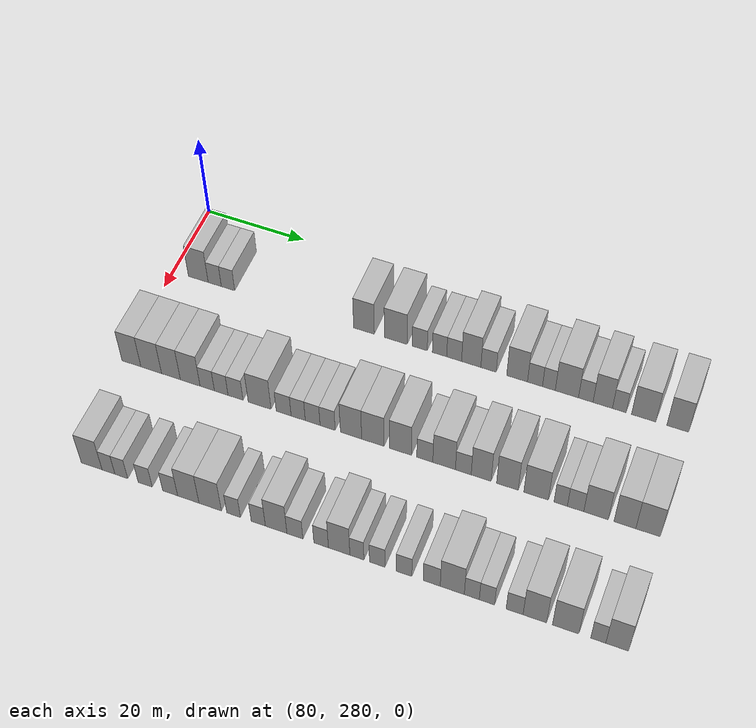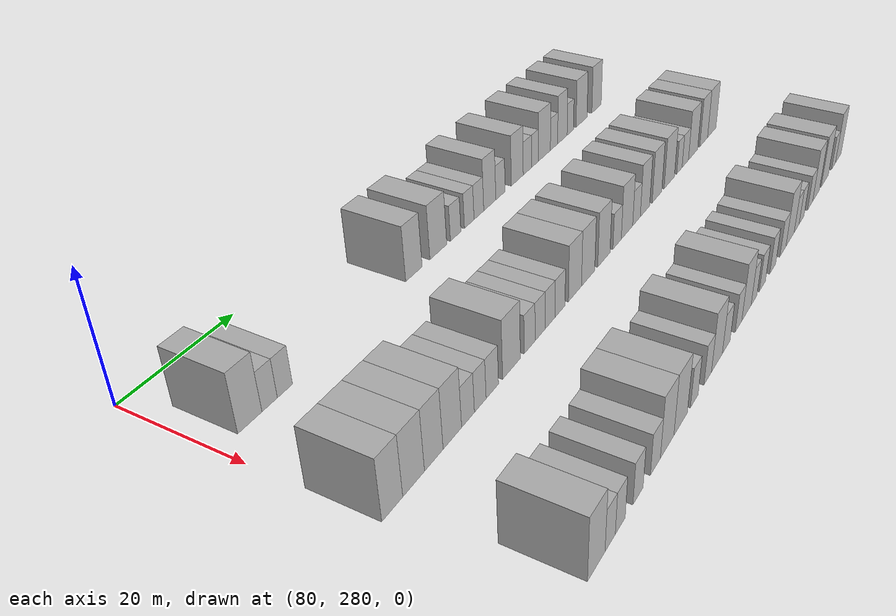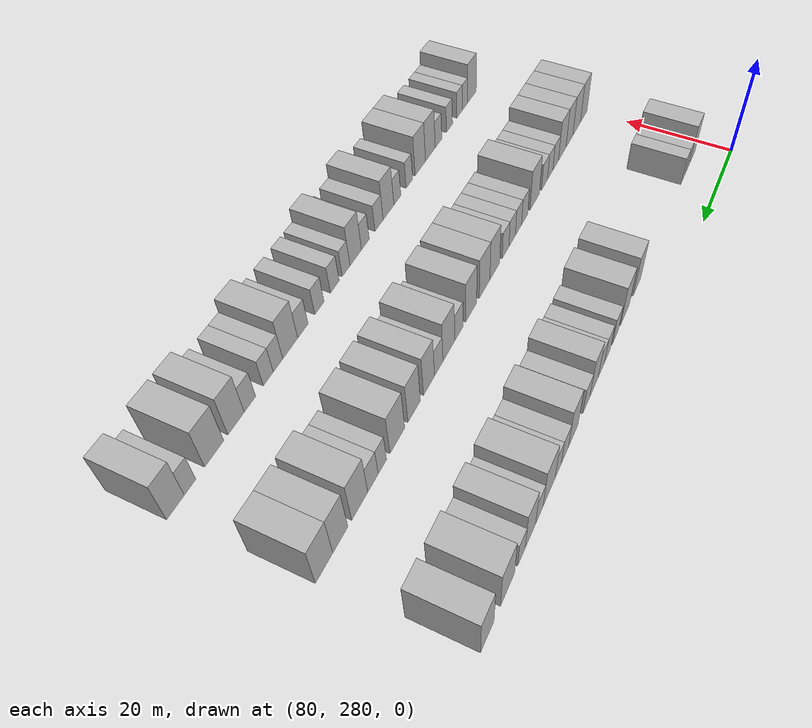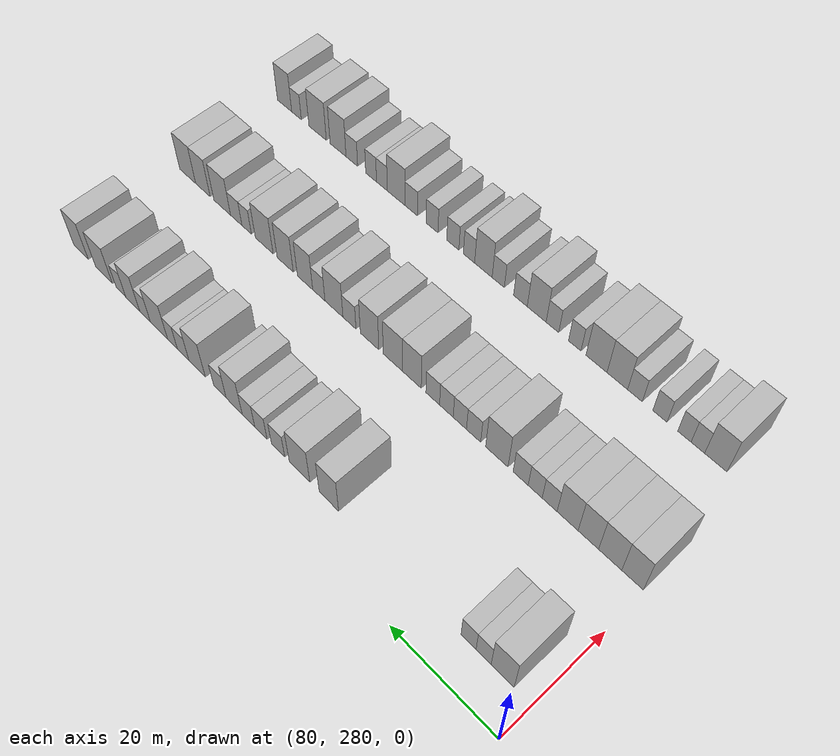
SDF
<sdf version="1.6">
 <world name="default">
  <model name="building_721">
   <static>1</static>
   <pose>91.0000 285.1965 0 0.000000 0.000000 0.000000</pose>
   <link name="link">
    <pose>0 0 4.50 0 0 0</pose>
    <collision name="collision"><geometry><box><size>10.0000 4.1044 9.0000</size></box></geometry></collision>
    <visual name="visual">
     <cast_shadows>0</cast_shadows>
     <geometry><box><size>10.0000 4.1044 9.0000</size></box></geometry>
     <material>
      <script>
       <uri>model://HANNAS_wall/materials/scripts</uri>
       <uri>model://HANNAS_wall/materials/textures</uri>
       <name>vrc/HANNAS_wall</name>
      </script>
     </material>
    </visual>
   </link>
  </model>
  <model name="building_722">
   <static>1</static>
   <pose>91.0000 288.6108 0 0.000000 0.000000 0.000000</pose>
   <link name="link">
    <pose>0 0 3.00 0 0 0</pose>
    <collision name="collision"><geometry><box><size>10.0000 2.7242 6.0000</size></box></geometry></collision>
    <visual name="visual">
     <cast_shadows>0</cast_shadows>
     <geometry><box><size>10.0000 2.7242 6.0000</size></box></geometry>
     <material>
      <script>
       <uri>model://HANNAS_wall/materials/scripts</uri>
       <uri>model://HANNAS_wall/materials/textures</uri>
       <name>vrc/HANNAS_wall</name>
      </script>
     </material>
    </visual>
   </link>
  </model>
  <model name="building_723">
   <static>1</static>
   <pose>91.0000 291.3552 0 0.000000 0.000000 0.000000</pose>
   <link name="link">
    <pose>0 0 3.00 0 0 0</pose>
    <collision name="collision"><geometry><box><size>10.0000 2.7645 6.0000</size></box></geometry></collision>
    <visual name="visual">
     <cast_shadows>0</cast_shadows>
     <geometry><box><size>10.0000 2.7645 6.0000</size></box></geometry>
     <material>
      <script>
       <uri>model://HANNAS_wall/materials/scripts</uri>
       <uri>model://HANNAS_wall/materials/textures</uri>
       <name>vrc/HANNAS_wall</name>
      </script>
     </material>
    </visual>
   </link>
  </model>
  <model name="building_724">
   <static>1</static>
   <pose>91.0000 318.8688 0 0.000000 0.000000 0.000000</pose>
   <link name="link">
    <pose>0 0 4.50 0 0 0</pose>
    <collision name="collision"><geometry><box><size>10.0000 4.0876 9.0000</size></box></geometry></collision>
    <visual name="visual">
     <cast_shadows>0</cast_shadows>
     <geometry><box><size>10.0000 4.0876 9.0000</size></box></geometry>
     <material>
      <script>
       <uri>model://HANNAS_wall/materials/scripts</uri>
       <uri>model://HANNAS_wall/materials/textures</uri>
       <name>vrc/HANNAS_wall</name>
      </script>
     </material>
    </visual>
   </link>
  </model>
  <model name="building_725">
   <static>1</static>
   <pose>91.0000 325.1496 0 0.000000 0.000000 0.000000</pose>
   <link name="link">
    <pose>0 0 4.50 0 0 0</pose>
    <collision name="collision"><geometry><box><size>10.0000 4.4740 9.0000</size></box></geometry></collision>
    <visual name="visual">
     <cast_shadows>0</cast_shadows>
     <geometry><box><size>10.0000 4.4740 9.0000</size></box></geometry>
     <material>
      <script>
       <uri>model://HANNAS_wall/materials/scripts</uri>
       <uri>model://HANNAS_wall/materials/textures</uri>
       <name>vrc/HANNAS_wall</name>
      </script>
     </material>
    </visual>
   </link>
  </model>
  <model name="building_726">
   <static>1</static>
   <pose>91.0000 329.8470 0 0.000000 0.000000 0.000000</pose>
   <link name="link">
    <pose>0 0 3.00 0 0 0</pose>
    <collision name="collision"><geometry><box><size>10.0000 2.9206 6.0000</size></box></geometry></collision>
    <visual name="visual">
     <cast_shadows>0</cast_shadows>
     <geometry><box><size>10.0000 2.9206 6.0000</size></box></geometry>
     <material>
      <script>
       <uri>model://HANNAS_wall/materials/scripts</uri>
       <uri>model://HANNAS_wall/materials/textures</uri>
       <name>vrc/HANNAS_wall</name>
      </script>
     </material>
    </visual>
   </link>
  </model>
  <model name="building_727">
   <static>1</static>
   <pose>91.0000 333.6961 0 0.000000 0.000000 0.000000</pose>
   <link name="link">
    <pose>0 0 3.00 0 0 0</pose>
    <collision name="collision"><geometry><box><size>10.0000 2.7776 6.0000</size></box></geometry></collision>
    <visual name="visual">
     <cast_shadows>0</cast_shadows>
     <geometry><box><size>10.0000 2.7776 6.0000</size></box></geometry>
     <material>
      <script>
       <uri>model://HANNAS_wall/materials/scripts</uri>
       <uri>model://HANNAS_wall/materials/textures</uri>
       <name>vrc/HANNAS_wall</name>
      </script>
     </material>
    </visual>
   </link>
  </model>
  <model name="building_728">
   <static>1</static>
   <pose>91.0000 336.5266 0 0.000000 0.000000 0.000000</pose>
   <link name="link">
    <pose>0 0 3.00 0 0 0</pose>
    <collision name="collision"><geometry><box><size>10.0000 2.8834 6.0000</size></box></geometry></collision>
    <visual name="visual">
     <cast_shadows>0</cast_shadows>
     <geometry><box><size>10.0000 2.8834 6.0000</size></box></geometry>
     <material>
      <script>
       <uri>model://HANNAS_wall/materials/scripts</uri>
       <uri>model://HANNAS_wall/materials/textures</uri>
       <name>vrc/HANNAS_wall</name>
      </script>
     </material>
    </visual>
   </link>
  </model>
  <model name="building_729">
   <static>1</static>
   <pose>91.0000 339.8227 0 0.000000 0.000000 0.000000</pose>
   <link name="link">
    <pose>0 0 4.50 0 0 0</pose>
    <collision name="collision"><geometry><box><size>10.0000 3.7089 9.0000</size></box></geometry></collision>
    <visual name="visual">
     <cast_shadows>0</cast_shadows>
     <geometry><box><size>10.0000 3.7089 9.0000</size></box></geometry>
     <material>
      <script>
       <uri>model://HANNAS_wall/materials/scripts</uri>
       <uri>model://HANNAS_wall/materials/textures</uri>
       <name>vrc/HANNAS_wall</name>
      </script>
     </material>
    </visual>
   </link>
  </model>
  <model name="building_730">
   <static>1</static>
   <pose>91.0000 343.1491 0 0.000000 0.000000 0.000000</pose>
   <link name="link">
    <pose>0 0 3.00 0 0 0</pose>
    <collision name="collision"><geometry><box><size>10.0000 2.9439 6.0000</size></box></geometry></collision>
    <visual name="visual">
     <cast_shadows>0</cast_shadows>
     <geometry><box><size>10.0000 2.9439 6.0000</size></box></geometry>
     <material>
      <script>
       <uri>model://HANNAS_wall/materials/scripts</uri>
       <uri>model://HANNAS_wall/materials/textures</uri>
       <name>vrc/HANNAS_wall</name>
      </script>
     </material>
    </visual>
   </link>
  </model>
  <model name="building_731">
   <static>1</static>
   <pose>91.0000 348.5971 0 0.000000 0.000000 0.000000</pose>
   <link name="link">
    <pose>0 0 4.50 0 0 0</pose>
    <collision name="collision"><geometry><box><size>10.0000 3.9522 9.0000</size></box></geometry></collision>
    <visual name="visual">
     <cast_shadows>0</cast_shadows>
     <geometry><box><size>10.0000 3.9522 9.0000</size></box></geometry>
     <material>
      <script>
       <uri>model://HANNAS_wall/materials/scripts</uri>
       <uri>model://HANNAS_wall/materials/textures</uri>
       <name>vrc/HANNAS_wall</name>
      </script>
     </material>
    </visual>
   </link>
  </model>
  <model name="building_732">
   <static>1</static>
   <pose>91.0000 351.9873 0 0.000000 0.000000 0.000000</pose>
   <link name="link">
    <pose>0 0 3.00 0 0 0</pose>
    <collision name="collision"><geometry><box><size>10.0000 2.8280 6.0000</size></box></geometry></collision>
    <visual name="visual">
     <cast_shadows>0</cast_shadows>
     <geometry><box><size>10.0000 2.8280 6.0000</size></box></geometry>
     <material>
      <script>
       <uri>model://HANNAS_wall/materials/scripts</uri>
       <uri>model://HANNAS_wall/materials/textures</uri>
       <name>vrc/HANNAS_wall</name>
      </script>
     </material>
    </visual>
   </link>
  </model>
  <model name="building_733">
   <static>1</static>
   <pose>91.0000 354.6055 0 0.000000 0.000000 0.000000</pose>
   <link name="link">
    <pose>0 0 3.00 0 0 0</pose>
    <collision name="collision"><geometry><box><size>10.0000 2.4084 6.0000</size></box></geometry></collision>
    <visual name="visual">
     <cast_shadows>0</cast_shadows>
     <geometry><box><size>10.0000 2.4084 6.0000</size></box></geometry>
     <material>
      <script>
       <uri>model://HANNAS_wall/materials/scripts</uri>
       <uri>model://HANNAS_wall/materials/textures</uri>
       <name>vrc/HANNAS_wall</name>
      </script>
     </material>
    </visual>
   </link>
  </model>
  <model name="building_734">
   <static>1</static>
   <pose>91.0000 357.9881 0 0.000000 0.000000 0.000000</pose>
   <link name="link">
    <pose>0 0 4.50 0 0 0</pose>
    <collision name="collision"><geometry><box><size>10.0000 4.3568 9.0000</size></box></geometry></collision>
    <visual name="visual">
     <cast_shadows>0</cast_shadows>
     <geometry><box><size>10.0000 4.3568 9.0000</size></box></geometry>
     <material>
      <script>
       <uri>model://HANNAS_wall/materials/scripts</uri>
       <uri>model://HANNAS_wall/materials/textures</uri>
       <name>vrc/HANNAS_wall</name>
      </script>
     </material>
    </visual>
   </link>
  </model>
  <model name="building_735">
   <static>1</static>
   <pose>91.0000 361.5213 0 0.000000 0.000000 0.000000</pose>
   <link name="link">
    <pose>0 0 3.00 0 0 0</pose>
    <collision name="collision"><geometry><box><size>10.0000 2.7095 6.0000</size></box></geometry></collision>
    <visual name="visual">
     <cast_shadows>0</cast_shadows>
     <geometry><box><size>10.0000 2.7095 6.0000</size></box></geometry>
     <material>
      <script>
       <uri>model://HANNAS_wall/materials/scripts</uri>
       <uri>model://HANNAS_wall/materials/textures</uri>
       <name>vrc/HANNAS_wall</name>
      </script>
     </material>
    </visual>
   </link>
  </model>
  <model name="building_736">
   <static>1</static>
   <pose>91.0000 364.6834 0 0.000000 0.000000 0.000000</pose>
   <link name="link">
    <pose>0 0 4.50 0 0 0</pose>
    <collision name="collision"><geometry><box><size>10.0000 3.6148 9.0000</size></box></geometry></collision>
    <visual name="visual">
     <cast_shadows>0</cast_shadows>
     <geometry><box><size>10.0000 3.6148 9.0000</size></box></geometry>
     <material>
      <script>
       <uri>model://HANNAS_wall/materials/scripts</uri>
       <uri>model://HANNAS_wall/materials/textures</uri>
       <name>vrc/HANNAS_wall</name>
      </script>
     </material>
    </visual>
   </link>
  </model>
  <model name="building_737">
   <static>1</static>
   <pose>91.0000 367.7470 0 0.000000 0.000000 0.000000</pose>
   <link name="link">
    <pose>0 0 3.00 0 0 0</pose>
    <collision name="collision"><geometry><box><size>10.0000 2.5124 6.0000</size></box></geometry></collision>
    <visual name="visual">
     <cast_shadows>0</cast_shadows>
     <geometry><box><size>10.0000 2.5124 6.0000</size></box></geometry>
     <material>
      <script>
       <uri>model://HANNAS_wall/materials/scripts</uri>
       <uri>model://HANNAS_wall/materials/textures</uri>
       <name>vrc/HANNAS_wall</name>
      </script>
     </material>
    </visual>
   </link>
  </model>
  <model name="building_738">
   <static>1</static>
   <pose>91.0000 372.2382 0 0.000000 0.000000 0.000000</pose>
   <link name="link">
    <pose>0 0 4.50 0 0 0</pose>
    <collision name="collision"><geometry><box><size>10.0000 4.4700 9.0000</size></box></geometry></collision>
    <visual name="visual">
     <cast_shadows>0</cast_shadows>
     <geometry><box><size>10.0000 4.4700 9.0000</size></box></geometry>
     <material>
      <script>
       <uri>model://HANNAS_wall/materials/scripts</uri>
       <uri>model://HANNAS_wall/materials/textures</uri>
       <name>vrc/HANNAS_wall</name>
      </script>
     </material>
    </visual>
   </link>
  </model>
  <model name="building_739">
   <static>1</static>
   <pose>91.0000 378.4650 0 0.000000 0.000000 0.000000</pose>
   <link name="link">
    <pose>0 0 4.50 0 0 0</pose>
    <collision name="collision"><geometry><box><size>10.0000 3.9837 9.0000</size></box></geometry></collision>
    <visual name="visual">
     <cast_shadows>0</cast_shadows>
     <geometry><box><size>10.0000 3.9837 9.0000</size></box></geometry>
     <material>
      <script>
       <uri>model://HANNAS_wall/materials/scripts</uri>
       <uri>model://HANNAS_wall/materials/textures</uri>
       <name>vrc/HANNAS_wall</name>
      </script>
     </material>
    </visual>
   </link>
  </model>
  <model name="building_900">
   <static>1</static>
   <pose>113.0000 282.1779 0 0.000000 0.000000 0.000000</pose>
   <link name="link">
    <pose>0 0 4.50 0 0 0</pose>
    <collision name="collision"><geometry><box><size>10.0000 3.8177 9.0000</size></box></geometry></collision>
    <visual name="visual">
     <cast_shadows>0</cast_shadows>
     <geometry><box><size>10.0000 3.8177 9.0000</size></box></geometry>
     <material>
      <script>
       <uri>model://HANNAS_wall/materials/scripts</uri>
       <uri>model://HANNAS_wall/materials/textures</uri>
       <name>vrc/HANNAS_wall</name>
      </script>
     </material>
    </visual>
   </link>
  </model>
  <model name="building_901">
   <static>1</static>
   <pose>113.0000 286.1667 0 0.000000 0.000000 0.000000</pose>
   <link name="link">
    <pose>0 0 4.50 0 0 0</pose>
    <collision name="collision"><geometry><box><size>10.0000 4.1598 9.0000</size></box></geometry></collision>
    <visual name="visual">
     <cast_shadows>0</cast_shadows>
     <geometry><box><size>10.0000 4.1598 9.0000</size></box></geometry>
     <material>
      <script>
       <uri>model://HANNAS_wall/materials/scripts</uri>
       <uri>model://HANNAS_wall/materials/textures</uri>
       <name>vrc/HANNAS_wall</name>
      </script>
     </material>
    </visual>
   </link>
  </model>
  <model name="building_902">
   <static>1</static>
   <pose>113.0000 290.1234 0 0.000000 0.000000 0.000000</pose>
   <link name="link">
    <pose>0 0 4.50 0 0 0</pose>
    <collision name="collision"><geometry><box><size>10.0000 3.7538 9.0000</size></box></geometry></collision>
    <visual name="visual">
     <cast_shadows>0</cast_shadows>
     <geometry><box><size>10.0000 3.7538 9.0000</size></box></geometry>
     <material>
      <script>
       <uri>model://HANNAS_wall/materials/scripts</uri>
       <uri>model://HANNAS_wall/materials/textures</uri>
       <name>vrc/HANNAS_wall</name>
      </script>
     </material>
    </visual>
   </link>
  </model>
  <model name="building_903">
   <static>1</static>
   <pose>113.0000 293.9611 0 0.000000 0.000000 0.000000</pose>
   <link name="link">
    <pose>0 0 4.50 0 0 0</pose>
    <collision name="collision"><geometry><box><size>10.0000 3.9216 9.0000</size></box></geometry></collision>
    <visual name="visual">
     <cast_shadows>0</cast_shadows>
     <geometry><box><size>10.0000 3.9216 9.0000</size></box></geometry>
     <material>
      <script>
       <uri>model://HANNAS_wall/materials/scripts</uri>
       <uri>model://HANNAS_wall/materials/textures</uri>
       <name>vrc/HANNAS_wall</name>
      </script>
     </material>
    </visual>
   </link>
  </model>
  <model name="building_904">
   <static>1</static>
   <pose>113.0000 297.3379 0 0.000000 0.000000 0.000000</pose>
   <link name="link">
    <pose>0 0 3.00 0 0 0</pose>
    <collision name="collision"><geometry><box><size>10.0000 2.8319 6.0000</size></box></geometry></collision>
    <visual name="visual">
     <cast_shadows>0</cast_shadows>
     <geometry><box><size>10.0000 2.8319 6.0000</size></box></geometry>
     <material>
      <script>
       <uri>model://HANNAS_wall/materials/scripts</uri>
       <uri>model://HANNAS_wall/materials/textures</uri>
       <name>vrc/HANNAS_wall</name>
      </script>
     </material>
    </visual>
   </link>
  </model>
  <model name="building_905">
   <static>1</static>
   <pose>113.0000 300.0976 0 0.000000 0.000000 0.000000</pose>
   <link name="link">
    <pose>0 0 3.00 0 0 0</pose>
    <collision name="collision"><geometry><box><size>10.0000 2.6874 6.0000</size></box></geometry></collision>
    <visual name="visual">
     <cast_shadows>0</cast_shadows>
     <geometry><box><size>10.0000 2.6874 6.0000</size></box></geometry>
     <material>
      <script>
       <uri>model://HANNAS_wall/materials/scripts</uri>
       <uri>model://HANNAS_wall/materials/textures</uri>
       <name>vrc/HANNAS_wall</name>
      </script>
     </material>
    </visual>
   </link>
  </model>
  <model name="building_906">
   <static>1</static>
   <pose>113.0000 302.9103 0 0.000000 0.000000 0.000000</pose>
   <link name="link">
    <pose>0 0 3.00 0 0 0</pose>
    <collision name="collision"><geometry><box><size>10.0000 2.9380 6.0000</size></box></geometry></collision>
    <visual name="visual">
     <cast_shadows>0</cast_shadows>
     <geometry><box><size>10.0000 2.9380 6.0000</size></box></geometry>
     <material>
      <script>
       <uri>model://HANNAS_wall/materials/scripts</uri>
       <uri>model://HANNAS_wall/materials/textures</uri>
       <name>vrc/HANNAS_wall</name>
      </script>
     </material>
    </visual>
   </link>
  </model>
  <model name="building_907">
   <static>1</static>
   <pose>113.0000 307.6089 0 0.000000 0.000000 0.000000</pose>
   <link name="link">
    <pose>0 0 4.50 0 0 0</pose>
    <collision name="collision"><geometry><box><size>10.0000 4.4592 9.0000</size></box></geometry></collision>
    <visual name="visual">
     <cast_shadows>0</cast_shadows>
     <geometry><box><size>10.0000 4.4592 9.0000</size></box></geometry>
     <material>
      <script>
       <uri>model://HANNAS_wall/materials/scripts</uri>
       <uri>model://HANNAS_wall/materials/textures</uri>
       <name>vrc/HANNAS_wall</name>
      </script>
     </material>
    </visual>
   </link>
  </model>
  <model name="building_908">
   <static>1</static>
   <pose>113.0000 312.2812 0 0.000000 0.000000 0.000000</pose>
   <link name="link">
    <pose>0 0 3.00 0 0 0</pose>
    <collision name="collision"><geometry><box><size>10.0000 2.8855 6.0000</size></box></geometry></collision>
    <visual name="visual">
     <cast_shadows>0</cast_shadows>
     <geometry><box><size>10.0000 2.8855 6.0000</size></box></geometry>
     <material>
      <script>
       <uri>model://HANNAS_wall/materials/scripts</uri>
       <uri>model://HANNAS_wall/materials/textures</uri>
       <name>vrc/HANNAS_wall</name>
      </script>
     </material>
    </visual>
   </link>
  </model>
  <model name="building_909">
   <static>1</static>
   <pose>113.0000 315.0869 0 0.000000 0.000000 0.000000</pose>
   <link name="link">
    <pose>0 0 3.00 0 0 0</pose>
    <collision name="collision"><geometry><box><size>10.0000 2.7259 6.0000</size></box></geometry></collision>
    <visual name="visual">
     <cast_shadows>0</cast_shadows>
     <geometry><box><size>10.0000 2.7259 6.0000</size></box></geometry>
     <material>
      <script>
       <uri>model://HANNAS_wall/materials/scripts</uri>
       <uri>model://HANNAS_wall/materials/textures</uri>
       <name>vrc/HANNAS_wall</name>
      </script>
     </material>
    </visual>
   </link>
  </model>
  <model name="building_910">
   <static>1</static>
   <pose>113.0000 317.8693 0 0.000000 0.000000 0.000000</pose>
   <link name="link">
    <pose>0 0 3.00 0 0 0</pose>
    <collision name="collision"><geometry><box><size>10.0000 2.8390 6.0000</size></box></geometry></collision>
    <visual name="visual">
     <cast_shadows>0</cast_shadows>
     <geometry><box><size>10.0000 2.8390 6.0000</size></box></geometry>
     <material>
      <script>
       <uri>model://HANNAS_wall/materials/scripts</uri>
       <uri>model://HANNAS_wall/materials/textures</uri>
       <name>vrc/HANNAS_wall</name>
      </script>
     </material>
    </visual>
   </link>
  </model>
  <model name="building_911">
   <static>1</static>
   <pose>113.0000 320.7309 0 0.000000 0.000000 0.000000</pose>
   <link name="link">
    <pose>0 0 3.00 0 0 0</pose>
    <collision name="collision"><geometry><box><size>10.0000 2.8842 6.0000</size></box></geometry></collision>
    <visual name="visual">
     <cast_shadows>0</cast_shadows>
     <geometry><box><size>10.0000 2.8842 6.0000</size></box></geometry>
     <material>
      <script>
       <uri>model://HANNAS_wall/materials/scripts</uri>
       <uri>model://HANNAS_wall/materials/textures</uri>
       <name>vrc/HANNAS_wall</name>
      </script>
     </material>
    </visual>
   </link>
  </model>
  <model name="building_912">
   <static>1</static>
   <pose>113.0000 325.1867 0 0.000000 0.000000 0.000000</pose>
   <link name="link">
    <pose>0 0 4.50 0 0 0</pose>
    <collision name="collision"><geometry><box><size>10.0000 4.0275 9.0000</size></box></geometry></collision>
    <visual name="visual">
     <cast_shadows>0</cast_shadows>
     <geometry><box><size>10.0000 4.0275 9.0000</size></box></geometry>
     <material>
      <script>
       <uri>model://HANNAS_wall/materials/scripts</uri>
       <uri>model://HANNAS_wall/materials/textures</uri>
       <name>vrc/HANNAS_wall</name>
      </script>
     </material>
    </visual>
   </link>
  </model>
  <model name="building_913">
   <static>1</static>
   <pose>113.0000 329.3112 0 0.000000 0.000000 0.000000</pose>
   <link name="link">
    <pose>0 0 4.50 0 0 0</pose>
    <collision name="collision"><geometry><box><size>10.0000 4.2214 9.0000</size></box></geometry></collision>
    <visual name="visual">
     <cast_shadows>0</cast_shadows>
     <geometry><box><size>10.0000 4.2214 9.0000</size></box></geometry>
     <material>
      <script>
       <uri>model://HANNAS_wall/materials/scripts</uri>
       <uri>model://HANNAS_wall/materials/textures</uri>
       <name>vrc/HANNAS_wall</name>
      </script>
     </material>
    </visual>
   </link>
  </model>
  <model name="building_914">
   <static>1</static>
   <pose>113.0000 334.4838 0 0.000000 0.000000 0.000000</pose>
   <link name="link">
    <pose>0 0 4.50 0 0 0</pose>
    <collision name="collision"><geometry><box><size>10.0000 4.1239 9.0000</size></box></geometry></collision>
    <visual name="visual">
     <cast_shadows>0</cast_shadows>
     <geometry><box><size>10.0000 4.1239 9.0000</size></box></geometry>
     <material>
      <script>
       <uri>model://HANNAS_wall/materials/scripts</uri>
       <uri>model://HANNAS_wall/materials/textures</uri>
       <name>vrc/HANNAS_wall</name>
      </script>
     </material>
    </visual>
   </link>
  </model>
  <model name="building_915">
   <static>1</static>
   <pose>113.0000 339.0324 0 0.000000 0.000000 0.000000</pose>
   <link name="link">
    <pose>0 0 3.00 0 0 0</pose>
    <collision name="collision"><geometry><box><size>10.0000 2.9733 6.0000</size></box></geometry></collision>
    <visual name="visual">
     <cast_shadows>0</cast_shadows>
     <geometry><box><size>10.0000 2.9733 6.0000</size></box></geometry>
     <material>
      <script>
       <uri>model://HANNAS_wall/materials/scripts</uri>
       <uri>model://HANNAS_wall/materials/textures</uri>
       <name>vrc/HANNAS_wall</name>
      </script>
     </material>
    </visual>
   </link>
  </model>
  <model name="building_916">
   <static>1</static>
   <pose>113.0000 342.6079 0 0.000000 0.000000 0.000000</pose>
   <link name="link">
    <pose>0 0 4.50 0 0 0</pose>
    <collision name="collision"><geometry><box><size>10.0000 4.1776 9.0000</size></box></geometry></collision>
    <visual name="visual">
     <cast_shadows>0</cast_shadows>
     <geometry><box><size>10.0000 4.1776 9.0000</size></box></geometry>
     <material>
      <script>
       <uri>model://HANNAS_wall/materials/scripts</uri>
       <uri>model://HANNAS_wall/materials/textures</uri>
       <name>vrc/HANNAS_wall</name>
      </script>
     </material>
    </visual>
   </link>
  </model>
  <model name="building_917">
   <static>1</static>
   <pose>113.0000 346.1414 0 0.000000 0.000000 0.000000</pose>
   <link name="link">
    <pose>0 0 3.00 0 0 0</pose>
    <collision name="collision"><geometry><box><size>10.0000 2.8895 6.0000</size></box></geometry></collision>
    <visual name="visual">
     <cast_shadows>0</cast_shadows>
     <geometry><box><size>10.0000 2.8895 6.0000</size></box></geometry>
     <material>
      <script>
       <uri>model://HANNAS_wall/materials/scripts</uri>
       <uri>model://HANNAS_wall/materials/textures</uri>
       <name>vrc/HANNAS_wall</name>
      </script>
     </material>
    </visual>
   </link>
  </model>
  <model name="building_918">
   <static>1</static>
   <pose>113.0000 349.4111 0 0.000000 0.000000 0.000000</pose>
   <link name="link">
    <pose>0 0 4.50 0 0 0</pose>
    <collision name="collision"><geometry><box><size>10.0000 3.6498 9.0000</size></box></geometry></collision>
    <visual name="visual">
     <cast_shadows>0</cast_shadows>
     <geometry><box><size>10.0000 3.6498 9.0000</size></box></geometry>
     <material>
      <script>
       <uri>model://HANNAS_wall/materials/scripts</uri>
       <uri>model://HANNAS_wall/materials/textures</uri>
       <name>vrc/HANNAS_wall</name>
      </script>
     </material>
    </visual>
   </link>
  </model>
  <model name="building_919">
   <static>1</static>
   <pose>113.0000 354.2037 0 0.000000 0.000000 0.000000</pose>
   <link name="link">
    <pose>0 0 4.50 0 0 0</pose>
    <collision name="collision"><geometry><box><size>10.0000 3.9356 9.0000</size></box></geometry></collision>
    <visual name="visual">
     <cast_shadows>0</cast_shadows>
     <geometry><box><size>10.0000 3.9356 9.0000</size></box></geometry>
     <material>
      <script>
       <uri>model://HANNAS_wall/materials/scripts</uri>
       <uri>model://HANNAS_wall/materials/textures</uri>
       <name>vrc/HANNAS_wall</name>
      </script>
     </material>
    </visual>
   </link>
  </model>
  <model name="building_920">
   <static>1</static>
   <pose>113.0000 359.3851 0 0.000000 0.000000 0.000000</pose>
   <link name="link">
    <pose>0 0 4.50 0 0 0</pose>
    <collision name="collision"><geometry><box><size>10.0000 4.4272 9.0000</size></box></geometry></collision>
    <visual name="visual">
     <cast_shadows>0</cast_shadows>
     <geometry><box><size>10.0000 4.4272 9.0000</size></box></geometry>
     <material>
      <script>
       <uri>model://HANNAS_wall/materials/scripts</uri>
       <uri>model://HANNAS_wall/materials/textures</uri>
       <name>vrc/HANNAS_wall</name>
      </script>
     </material>
    </visual>
   </link>
  </model>
  <model name="building_921">
   <static>1</static>
   <pose>113.0000 363.7994 0 0.000000 0.000000 0.000000</pose>
   <link name="link">
    <pose>0 0 3.00 0 0 0</pose>
    <collision name="collision"><geometry><box><size>10.0000 2.4014 6.0000</size></box></geometry></collision>
    <visual name="visual">
     <cast_shadows>0</cast_shadows>
     <geometry><box><size>10.0000 2.4014 6.0000</size></box></geometry>
     <material>
      <script>
       <uri>model://HANNAS_wall/materials/scripts</uri>
       <uri>model://HANNAS_wall/materials/textures</uri>
       <name>vrc/HANNAS_wall</name>
      </script>
     </material>
    </visual>
   </link>
  </model>
  <model name="building_922">
   <static>1</static>
   <pose>113.0000 366.4573 0 0.000000 0.000000 0.000000</pose>
   <link name="link">
    <pose>0 0 3.00 0 0 0</pose>
    <collision name="collision"><geometry><box><size>10.0000 2.9144 6.0000</size></box></geometry></collision>
    <visual name="visual">
     <cast_shadows>0</cast_shadows>
     <geometry><box><size>10.0000 2.9144 6.0000</size></box></geometry>
     <material>
      <script>
       <uri>model://HANNAS_wall/materials/scripts</uri>
       <uri>model://HANNAS_wall/materials/textures</uri>
       <name>vrc/HANNAS_wall</name>
      </script>
     </material>
    </visual>
   </link>
  </model>
  <model name="building_923">
   <static>1</static>
   <pose>113.0000 370.0884 0 0.000000 0.000000 0.000000</pose>
   <link name="link">
    <pose>0 0 4.50 0 0 0</pose>
    <collision name="collision"><geometry><box><size>10.0000 4.3478 9.0000</size></box></geometry></collision>
    <visual name="visual">
     <cast_shadows>0</cast_shadows>
     <geometry><box><size>10.0000 4.3478 9.0000</size></box></geometry>
     <material>
      <script>
       <uri>model://HANNAS_wall/materials/scripts</uri>
       <uri>model://HANNAS_wall/materials/textures</uri>
       <name>vrc/HANNAS_wall</name>
      </script>
     </material>
    </visual>
   </link>
  </model>
  <model name="building_924">
   <static>1</static>
   <pose>113.0000 375.1845 0 0.000000 0.000000 0.000000</pose>
   <link name="link">
    <pose>0 0 4.50 0 0 0</pose>
    <collision name="collision"><geometry><box><size>10.0000 3.8443 9.0000</size></box></geometry></collision>
    <visual name="visual">
     <cast_shadows>0</cast_shadows>
     <geometry><box><size>10.0000 3.8443 9.0000</size></box></geometry>
     <material>
      <script>
       <uri>model://HANNAS_wall/materials/scripts</uri>
       <uri>model://HANNAS_wall/materials/textures</uri>
       <name>vrc/HANNAS_wall</name>
      </script>
     </material>
    </visual>
   </link>
  </model>
  <model name="building_925">
   <static>1</static>
   <pose>113.0000 379.2477 0 0.000000 0.000000 0.000000</pose>
   <link name="link">
    <pose>0 0 4.50 0 0 0</pose>
    <collision name="collision"><geometry><box><size>10.0000 4.2822 9.0000</size></box></geometry></collision>
    <visual name="visual">
     <cast_shadows>0</cast_shadows>
     <geometry><box><size>10.0000 4.2822 9.0000</size></box></geometry>
     <material>
      <script>
       <uri>model://HANNAS_wall/materials/scripts</uri>
       <uri>model://HANNAS_wall/materials/textures</uri>
       <name>vrc/HANNAS_wall</name>
      </script>
     </material>
    </visual>
   </link>
  </model>
  <model name="building_1096">
   <static>1</static>
   <pose>135.0000 285.5254 0 0.000000 0.000000 0.000000</pose>
   <link name="link">
    <pose>0 0 4.50 0 0 0</pose>
    <collision name="collision"><geometry><box><size>10.0000 4.0432 9.0000</size></box></geometry></collision>
    <visual name="visual">
     <cast_shadows>0</cast_shadows>
     <geometry><box><size>10.0000 4.0432 9.0000</size></box></geometry>
     <material>
      <script>
       <uri>model://HANNAS_wall/materials/scripts</uri>
       <uri>model://HANNAS_wall/materials/textures</uri>
       <name>vrc/HANNAS_wall</name>
      </script>
     </material>
    </visual>
   </link>
  </model>
  <model name="building_1097">
   <static>1</static>
   <pose>135.0000 288.7886 0 0.000000 0.000000 0.000000</pose>
   <link name="link">
    <pose>0 0 3.00 0 0 0</pose>
    <collision name="collision"><geometry><box><size>10.0000 2.4832 6.0000</size></box></geometry></collision>
    <visual name="visual">
     <cast_shadows>0</cast_shadows>
     <geometry><box><size>10.0000 2.4832 6.0000</size></box></geometry>
     <material>
      <script>
       <uri>model://HANNAS_wall/materials/scripts</uri>
       <uri>model://HANNAS_wall/materials/textures</uri>
       <name>vrc/HANNAS_wall</name>
      </script>
     </material>
    </visual>
   </link>
  </model>
  <model name="building_1098">
   <static>1</static>
   <pose>135.0000 291.2657 0 0.000000 0.000000 0.000000</pose>
   <link name="link">
    <pose>0 0 3.00 0 0 0</pose>
    <collision name="collision"><geometry><box><size>10.0000 2.4710 6.0000</size></box></geometry></collision>
    <visual name="visual">
     <cast_shadows>0</cast_shadows>
     <geometry><box><size>10.0000 2.4710 6.0000</size></box></geometry>
     <material>
      <script>
       <uri>model://HANNAS_wall/materials/scripts</uri>
       <uri>model://HANNAS_wall/materials/textures</uri>
       <name>vrc/HANNAS_wall</name>
      </script>
     </material>
    </visual>
   </link>
  </model>
  <model name="building_1099">
   <static>1</static>
   <pose>135.0000 295.8492 0 0.000000 0.000000 0.000000</pose>
   <link name="link">
    <pose>0 0 3.00 0 0 0</pose>
    <collision name="collision"><geometry><box><size>10.0000 2.6961 6.0000</size></box></geometry></collision>
    <visual name="visual">
     <cast_shadows>0</cast_shadows>
     <geometry><box><size>10.0000 2.6961 6.0000</size></box></geometry>
     <material>
      <script>
       <uri>model://HANNAS_wall/materials/scripts</uri>
       <uri>model://HANNAS_wall/materials/textures</uri>
       <name>vrc/HANNAS_wall</name>
      </script>
     </material>
    </visual>
   </link>
  </model>
  <model name="building_1100">
   <static>1</static>
   <pose>135.0000 300.6150 0 0.000000 0.000000 0.000000</pose>
   <link name="link">
    <pose>0 0 3.00 0 0 0</pose>
    <collision name="collision"><geometry><box><size>10.0000 2.8356 6.0000</size></box></geometry></collision>
    <visual name="visual">
     <cast_shadows>0</cast_shadows>
     <geometry><box><size>10.0000 2.8356 6.0000</size></box></geometry>
     <material>
      <script>
       <uri>model://HANNAS_wall/materials/scripts</uri>
       <uri>model://HANNAS_wall/materials/textures</uri>
       <name>vrc/HANNAS_wall</name>
      </script>
     </material>
    </visual>
   </link>
  </model>
  <model name="building_1101">
   <static>1</static>
   <pose>135.0000 304.0481 0 0.000000 0.000000 0.000000</pose>
   <link name="link">
    <pose>0 0 4.50 0 0 0</pose>
    <collision name="collision"><geometry><box><size>10.0000 4.0305 9.0000</size></box></geometry></collision>
    <visual name="visual">
     <cast_shadows>0</cast_shadows>
     <geometry><box><size>10.0000 4.0305 9.0000</size></box></geometry>
     <material>
      <script>
       <uri>model://HANNAS_wall/materials/scripts</uri>
       <uri>model://HANNAS_wall/materials/textures</uri>
       <name>vrc/HANNAS_wall</name>
      </script>
     </material>
    </visual>
   </link>
  </model>
  <model name="building_1102">
   <static>1</static>
   <pose>135.0000 308.1720 0 0.000000 0.000000 0.000000</pose>
   <link name="link">
    <pose>0 0 4.50 0 0 0</pose>
    <collision name="collision"><geometry><box><size>10.0000 4.2173 9.0000</size></box></geometry></collision>
    <visual name="visual">
     <cast_shadows>0</cast_shadows>
     <geometry><box><size>10.0000 4.2173 9.0000</size></box></geometry>
     <material>
      <script>
       <uri>model://HANNAS_wall/materials/scripts</uri>
       <uri>model://HANNAS_wall/materials/textures</uri>
       <name>vrc/HANNAS_wall</name>
      </script>
     </material>
    </visual>
   </link>
  </model>
  <model name="building_1103">
   <static>1</static>
   <pose>135.0000 312.5528 0 0.000000 0.000000 0.000000</pose>
   <link name="link">
    <pose>0 0 3.00 0 0 0</pose>
    <collision name="collision"><geometry><box><size>10.0000 2.5443 6.0000</size></box></geometry></collision>
    <visual name="visual">
     <cast_shadows>0</cast_shadows>
     <geometry><box><size>10.0000 2.5443 6.0000</size></box></geometry>
     <material>
      <script>
       <uri>model://HANNAS_wall/materials/scripts</uri>
       <uri>model://HANNAS_wall/materials/textures</uri>
       <name>vrc/HANNAS_wall</name>
      </script>
     </material>
    </visual>
   </link>
  </model>
  <model name="building_1104">
   <static>1</static>
   <pose>135.0000 317.1365 0 0.000000 0.000000 0.000000</pose>
   <link name="link">
    <pose>0 0 3.00 0 0 0</pose>
    <collision name="collision"><geometry><box><size>10.0000 2.6232 6.0000</size></box></geometry></collision>
    <visual name="visual">
     <cast_shadows>0</cast_shadows>
     <geometry><box><size>10.0000 2.6232 6.0000</size></box></geometry>
     <material>
      <script>
       <uri>model://HANNAS_wall/materials/scripts</uri>
       <uri>model://HANNAS_wall/materials/textures</uri>
       <name>vrc/HANNAS_wall</name>
      </script>
     </material>
    </visual>
   </link>
  </model>
  <model name="building_1105">
   <static>1</static>
   <pose>135.0000 320.4362 0 0.000000 0.000000 0.000000</pose>
   <link name="link">
    <pose>0 0 4.50 0 0 0</pose>
    <collision name="collision"><geometry><box><size>10.0000 3.9762 9.0000</size></box></geometry></collision>
    <visual name="visual">
     <cast_shadows>0</cast_shadows>
     <geometry><box><size>10.0000 3.9762 9.0000</size></box></geometry>
     <material>
      <script>
       <uri>model://HANNAS_wall/materials/scripts</uri>
       <uri>model://HANNAS_wall/materials/textures</uri>
       <name>vrc/HANNAS_wall</name>
      </script>
     </material>
    </visual>
   </link>
  </model>
  <model name="building_1106">
   <static>1</static>
   <pose>135.0000 323.8848 0 0.000000 0.000000 0.000000</pose>
   <link name="link">
    <pose>0 0 3.00 0 0 0</pose>
    <collision name="collision"><geometry><box><size>10.0000 2.9212 6.0000</size></box></geometry></collision>
    <visual name="visual">
     <cast_shadows>0</cast_shadows>
     <geometry><box><size>10.0000 2.9212 6.0000</size></box></geometry>
     <material>
      <script>
       <uri>model://HANNAS_wall/materials/scripts</uri>
       <uri>model://HANNAS_wall/materials/textures</uri>
       <name>vrc/HANNAS_wall</name>
      </script>
     </material>
    </visual>
   </link>
  </model>
  <model name="building_1107">
   <static>1</static>
   <pose>135.0000 328.6710 0 0.000000 0.000000 0.000000</pose>
   <link name="link">
    <pose>0 0 3.00 0 0 0</pose>
    <collision name="collision"><geometry><box><size>10.0000 2.6511 6.0000</size></box></geometry></collision>
    <visual name="visual">
     <cast_shadows>0</cast_shadows>
     <geometry><box><size>10.0000 2.6511 6.0000</size></box></geometry>
     <material>
      <script>
       <uri>model://HANNAS_wall/materials/scripts</uri>
       <uri>model://HANNAS_wall/materials/textures</uri>
       <name>vrc/HANNAS_wall</name>
      </script>
     </material>
    </visual>
   </link>
  </model>
  <model name="building_1108">
   <static>1</static>
   <pose>135.0000 331.9317 0 0.000000 0.000000 0.000000</pose>
   <link name="link">
    <pose>0 0 4.50 0 0 0</pose>
    <collision name="collision"><geometry><box><size>10.0000 3.8705 9.0000</size></box></geometry></collision>
    <visual name="visual">
     <cast_shadows>0</cast_shadows>
     <geometry><box><size>10.0000 3.8705 9.0000</size></box></geometry>
     <material>
      <script>
       <uri>model://HANNAS_wall/materials/scripts</uri>
       <uri>model://HANNAS_wall/materials/textures</uri>
       <name>vrc/HANNAS_wall</name>
      </script>
     </material>
    </visual>
   </link>
  </model>
  <model name="building_1109">
   <static>1</static>
   <pose>135.0000 335.1309 0 0.000000 0.000000 0.000000</pose>
   <link name="link">
    <pose>0 0 3.00 0 0 0</pose>
    <collision name="collision"><geometry><box><size>10.0000 2.5279 6.0000</size></box></geometry></collision>
    <visual name="visual">
     <cast_shadows>0</cast_shadows>
     <geometry><box><size>10.0000 2.5279 6.0000</size></box></geometry>
     <material>
      <script>
       <uri>model://HANNAS_wall/materials/scripts</uri>
       <uri>model://HANNAS_wall/materials/textures</uri>
       <name>vrc/HANNAS_wall</name>
      </script>
     </material>
    </visual>
   </link>
  </model>
  <model name="building_1110">
   <static>1</static>
   <pose>135.0000 338.7813 0 0.000000 0.000000 0.000000</pose>
   <link name="link">
    <pose>0 0 3.00 0 0 0</pose>
    <collision name="collision"><geometry><box><size>10.0000 2.7728 6.0000</size></box></geometry></collision>
    <visual name="visual">
     <cast_shadows>0</cast_shadows>
     <geometry><box><size>10.0000 2.7728 6.0000</size></box></geometry>
     <material>
      <script>
       <uri>model://HANNAS_wall/materials/scripts</uri>
       <uri>model://HANNAS_wall/materials/textures</uri>
       <name>vrc/HANNAS_wall</name>
      </script>
     </material>
    </visual>
   </link>
  </model>
  <model name="building_1111">
   <static>1</static>
   <pose>135.0000 343.5595 0 0.000000 0.000000 0.000000</pose>
   <link name="link">
    <pose>0 0 3.00 0 0 0</pose>
    <collision name="collision"><geometry><box><size>10.0000 2.7837 6.0000</size></box></geometry></collision>
    <visual name="visual">
     <cast_shadows>0</cast_shadows>
     <geometry><box><size>10.0000 2.7837 6.0000</size></box></geometry>
     <material>
      <script>
       <uri>model://HANNAS_wall/materials/scripts</uri>
       <uri>model://HANNAS_wall/materials/textures</uri>
       <name>vrc/HANNAS_wall</name>
      </script>
     </material>
    </visual>
   </link>
  </model>
  <model name="building_1112">
   <static>1</static>
   <pose>135.0000 348.4511 0 0.000000 0.000000 0.000000</pose>
   <link name="link">
    <pose>0 0 3.00 0 0 0</pose>
    <collision name="collision"><geometry><box><size>10.0000 2.9994 6.0000</size></box></geometry></collision>
    <visual name="visual">
     <cast_shadows>0</cast_shadows>
     <geometry><box><size>10.0000 2.9994 6.0000</size></box></geometry>
     <material>
      <script>
       <uri>model://HANNAS_wall/materials/scripts</uri>
       <uri>model://HANNAS_wall/materials/textures</uri>
       <name>vrc/HANNAS_wall</name>
      </script>
     </material>
    </visual>
   </link>
  </model>
  <model name="building_1113">
   <static>1</static>
   <pose>135.0000 352.0609 0 0.000000 0.000000 0.000000</pose>
   <link name="link">
    <pose>0 0 4.50 0 0 0</pose>
    <collision name="collision"><geometry><box><size>10.0000 4.2201 9.0000</size></box></geometry></collision>
    <visual name="visual">
     <cast_shadows>0</cast_shadows>
     <geometry><box><size>10.0000 4.2201 9.0000</size></box></geometry>
     <material>
      <script>
       <uri>model://HANNAS_wall/materials/scripts</uri>
       <uri>model://HANNAS_wall/materials/textures</uri>
       <name>vrc/HANNAS_wall</name>
      </script>
     </material>
    </visual>
   </link>
  </model>
  <model name="building_1114">
   <static>1</static>
   <pose>135.0000 355.4747 0 0.000000 0.000000 0.000000</pose>
   <link name="link">
    <pose>0 0 3.00 0 0 0</pose>
    <collision name="collision"><geometry><box><size>10.0000 2.6075 6.0000</size></box></geometry></collision>
    <visual name="visual">
     <cast_shadows>0</cast_shadows>
     <geometry><box><size>10.0000 2.6075 6.0000</size></box></geometry>
     <material>
      <script>
       <uri>model://HANNAS_wall/materials/scripts</uri>
       <uri>model://HANNAS_wall/materials/textures</uri>
       <name>vrc/HANNAS_wall</name>
      </script>
     </material>
    </visual>
   </link>
  </model>
  <model name="building_1115">
   <static>1</static>
   <pose>135.0000 358.1046 0 0.000000 0.000000 0.000000</pose>
   <link name="link">
    <pose>0 0 3.00 0 0 0</pose>
    <collision name="collision"><geometry><box><size>10.0000 2.6524 6.0000</size></box></geometry></collision>
    <visual name="visual">
     <cast_shadows>0</cast_shadows>
     <geometry><box><size>10.0000 2.6524 6.0000</size></box></geometry>
     <material>
      <script>
       <uri>model://HANNAS_wall/materials/scripts</uri>
       <uri>model://HANNAS_wall/materials/textures</uri>
       <name>vrc/HANNAS_wall</name>
      </script>
     </material>
    </visual>
   </link>
  </model>
  <model name="building_1116">
   <static>1</static>
   <pose>135.0000 362.8857 0 0.000000 0.000000 0.000000</pose>
   <link name="link">
    <pose>0 0 3.00 0 0 0</pose>
    <collision name="collision"><geometry><box><size>10.0000 2.9098 6.0000</size></box></geometry></collision>
    <visual name="visual">
     <cast_shadows>0</cast_shadows>
     <geometry><box><size>10.0000 2.9098 6.0000</size></box></geometry>
     <material>
      <script>
       <uri>model://HANNAS_wall/materials/scripts</uri>
       <uri>model://HANNAS_wall/materials/textures</uri>
       <name>vrc/HANNAS_wall</name>
      </script>
     </material>
    </visual>
   </link>
  </model>
  <model name="building_1117">
   <static>1</static>
   <pose>135.0000 366.3530 0 0.000000 0.000000 0.000000</pose>
   <link name="link">
    <pose>0 0 4.50 0 0 0</pose>
    <collision name="collision"><geometry><box><size>10.0000 4.0249 9.0000</size></box></geometry></collision>
    <visual name="visual">
     <cast_shadows>0</cast_shadows>
     <geometry><box><size>10.0000 4.0249 9.0000</size></box></geometry>
     <material>
      <script>
       <uri>model://HANNAS_wall/materials/scripts</uri>
       <uri>model://HANNAS_wall/materials/textures</uri>
       <name>vrc/HANNAS_wall</name>
      </script>
     </material>
    </visual>
   </link>
  </model>
  <model name="building_1118">
   <static>1</static>
   <pose>135.0000 371.6080 0 0.000000 0.000000 0.000000</pose>
   <link name="link">
    <pose>0 0 4.50 0 0 0</pose>
    <collision name="collision"><geometry><box><size>10.0000 4.4850 9.0000</size></box></geometry></collision>
    <visual name="visual">
     <cast_shadows>0</cast_shadows>
     <geometry><box><size>10.0000 4.4850 9.0000</size></box></geometry>
     <material>
      <script>
       <uri>model://HANNAS_wall/materials/scripts</uri>
       <uri>model://HANNAS_wall/materials/textures</uri>
       <name>vrc/HANNAS_wall</name>
      </script>
     </material>
    </visual>
   </link>
  </model>
  <model name="building_1119">
   <static>1</static>
   <pose>135.0000 377.1199 0 0.000000 0.000000 0.000000</pose>
   <link name="link">
    <pose>0 0 3.00 0 0 0</pose>
    <collision name="collision"><geometry><box><size>10.0000 2.5388 6.0000</size></box></geometry></collision>
    <visual name="visual">
     <cast_shadows>0</cast_shadows>
     <geometry><box><size>10.0000 2.5388 6.0000</size></box></geometry>
     <material>
      <script>
       <uri>model://HANNAS_wall/materials/scripts</uri>
       <uri>model://HANNAS_wall/materials/textures</uri>
       <name>vrc/HANNAS_wall</name>
      </script>
     </material>
    </visual>
   </link>
  </model>
  <model name="building_1120">
   <static>1</static>
   <pose>135.0000 380.2930 0 0.000000 0.000000 0.000000</pose>
   <link name="link">
    <pose>0 0 4.50 0 0 0</pose>
    <collision name="collision"><geometry><box><size>10.0000 3.8075 9.0000</size></box></geometry></collision>
    <visual name="visual">
     <cast_shadows>0</cast_shadows>
     <geometry><box><size>10.0000 3.8075 9.0000</size></box></geometry>
     <material>
      <script>
       <uri>model://HANNAS_wall/materials/scripts</uri>
       <uri>model://HANNAS_wall/materials/textures</uri>
       <name>vrc/HANNAS_wall</name>
      </script>
     </material>
    </visual>
   </link>
  </model>
 </world>
</sdf>
